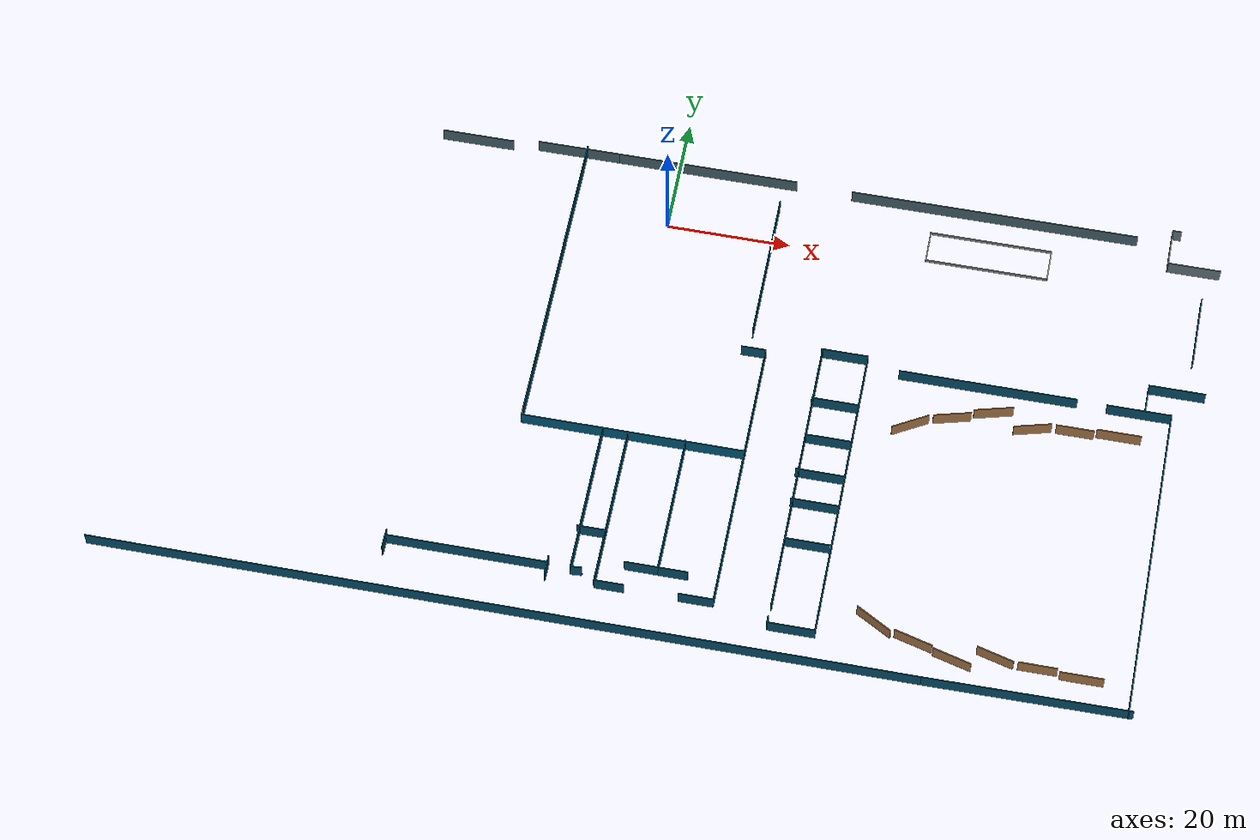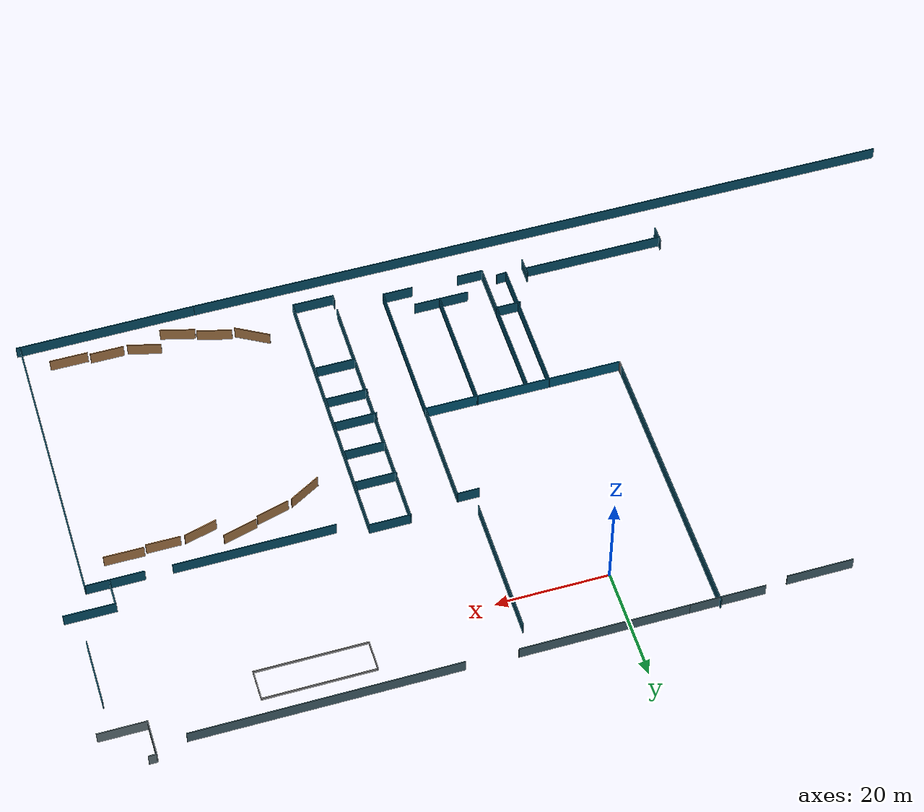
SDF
<sdf version="1.6">
 <model name="eceb_mp3">
  <pose>2.10284 -4.41124 0 0 -0 0</pose>
  <link name="Wall_104">
   <collision name="Wall_104_Collision">
    <geometry><box><size>11 0.15 2.5</size></box></geometry>
    <pose>0 0 1.25 0 -0 0</pose>
   </collision>
   <visual name="Wall_104_Visual">
    <pose>0 0 1.25 0 -0 0</pose>
    <geometry><box><size>11.75 0.15 2.5</size></box></geometry>
    <material>
     <script><uri>file://media/materials/scripts/gazebo.material</uri><name>Gazebo/Grey</name></script>
     <ambient>0.282353 0.403922 0.447059 1</ambient>
    </material>
    <meta><layer>0</layer></meta>
   </visual>
   <pose>-35.4921 14.5407 0 0 -0 3.14159</pose>
  </link>
  <link name="Wall_110">
   <collision name="Wall_110_Collision">
    <geometry><box><size>13 0.15 2.5</size></box></geometry>
    <pose>0 0 1.25 0 -0 0</pose>
   </collision>
   <visual name="Wall_110_Visual">
    <pose>0 0 1.25 0 -0 0</pose>
    <geometry><box><size>13.5 0.15 2.5</size></box></geometry>
    <material>
     <script><uri>file://media/materials/scripts/gazebo.material</uri><name>Gazebo/Grey</name></script>
     <ambient>0.282353 0.403922 0.447059 1</ambient>
    </material>
    <meta><layer>0</layer></meta>
   </visual>
   <pose>-18.8662 15.230800 0 0 -0 3.14159</pose>
  </link>
  <link name="Wall_127">
   <collision name="Wall_127_Collision">
    <geometry><box><size>29 0.15 2.5</size></box></geometry>
    <pose>0 0 1.25 0 -0 0</pose>
   </collision>
   <visual name="Wall_127_Visual">
    <pose>0 0 1.25 0 -0 0</pose>
    <geometry><box><size>29.5 0.15 2.5</size></box></geometry>
    <material>
     <script><uri>file://media/materials/scripts/gazebo.material</uri><name>Gazebo/Grey</name></script>
     <ambient>0.282353 0.403922 0.447059 1</ambient>
    </material>
    <meta><layer>0</layer></meta>
   </visual>
   <pose>2.44485 15.2308 0 0 -0 3.14159</pose>
  </link>
  <link name="Wall_134">
   <collision name="Wall_134_Collision">
    <geometry><box><size>51 0.15 2.5</size></box></geometry>
    <pose>0 0 1.25 0 -0 0</pose>
   </collision>
   <visual name="Wall_134_Visual">
    <pose>0 0 1.25 0 -0 0</pose>
    <geometry><box><size>51 0.15 2.5</size></box></geometry>
    <material>
     <script><uri>file://media/materials/scripts/gazebo.material</uri><name>Gazebo/Grey</name></script>
     <ambient>0.0313726 0.333333 0.443137 1</ambient>
    </material>
    <meta><layer>0</layer></meta>
   </visual>
   <pose>-17.5625 -9.64396 0 0 -0 -1.5708</pose>
  </link>
  <link name="Wall_148">
   <collision name="Wall_148_Collision">
    <geometry><box><size>129 0.15 2.5</size></box></geometry>
    <pose>0 0 1.25 0 -0 0</pose>
   </collision>
   <visual name="Wall_148_Visual">
    <pose>0 0 1.25 0 -0 0</pose>
    <geometry><box><size>129.5 0.15 2.5</size></box></geometry>
    <material>
     <script><uri>file://media/materials/scripts/gazebo.material</uri><name>Gazebo/Grey</name></script>
     <ambient>0.0313726 0.333333 0.443137 1</ambient>
    </material>
    <meta><layer>0</layer></meta>
   </visual>
   <pose>-13.9833 -69.8833 0 0 -0 0</pose>
  </link>
  <link name="Wall_151">
   <collision name="Wall_151_Collision">
    <geometry><box><size>32 0.15 2.5</size></box></geometry>
    <pose>0 0 1.25 0 -0 0</pose>
   </collision>
   <visual name="Wall_151_Visual">
    <pose>0 0 1.25 0 -0 0</pose>
    <geometry><box><size>32.09 0.15 2.5</size></box></geometry>
    <material>
     <script><uri>file://media/materials/scripts/gazebo.material</uri><name>Gazebo/Grey</name></script>
     <ambient>0.0313726 0.333333 0.443137 1</ambient>
    </material>
    <meta><layer>0</layer></meta>
   </visual>
   <pose>66.8099 -69.7617 0 0 -0 -3.13376</pose>
  </link>
  <link name="Wall_177">
   <collision name="Wall_177_Collision">
    <geometry><box><size>1 0.15 2.5</size></box></geometry>
    <pose>0 0 1.25 0 -0 0</pose>
   </collision>
   <visual name="Wall_177_Visual">
    <pose>0 0 1.25 0 -0 0</pose>
    <geometry><box><size>1.25 0.15 2.5</size></box></geometry>
    <material>
     <script><uri>file://media/materials/scripts/gazebo.material</uri><name>Gazebo/Grey</name></script>
     <ambient>1 1 1 1</ambient>
    </material>
    <meta><layer>0</layer></meta>
   </visual>
   <pose>-17.5625 -35.619 0 0 -0 -1.5708</pose>
  </link>
  <link name="Wall_178">
   <collision name="Wall_178_Collision">
    <geometry><box><size>35 0.15 2.5</size></box></geometry>
    <pose>0 0 1.25 0 -0 0</pose>
   </collision>
   <visual name="Wall_178_Visual">
    <pose>0 0 1.25 0 -0 0</pose>
    <geometry><box><size>35.5 0.15 2.5</size></box></geometry>
    <material>
     <script><uri>file://media/materials/scripts/gazebo.material</uri><name>Gazebo/Grey</name></script>
     <ambient>0.00784314 0.372549 0.505882 1</ambient>
    </material>
    <meta><layer>0</layer></meta>
   </visual>
   <pose>0.112491 -36.169 0 0 -0 0</pose>
  </link>
  <link name="Wall_180">
   <collision name="Wall_180_Collision">
    <geometry><box><size>3 0.15 2.5</size></box></geometry>
    <pose>0 0 1.25 0 -0 0</pose>
   </collision>
   <visual name="Wall_180_Visual">
    <pose>0 0 1.25 0 -0 0</pose>
    <geometry><box><size>3.25 0.15 2.5</size></box></geometry>
    <material>
     <script><uri>file://media/materials/scripts/gazebo.material</uri><name>Gazebo/Grey</name></script>
     <ambient>0.0313726 0.333333 0.443137 1</ambient>
    </material>
    <meta><layer>0</layer></meta>
   </visual>
   <pose>-33.5892 -61.8114 0 0 -0 -1.5708</pose>
  </link>
  <link name="Wall_182">
   <collision name="Wall_182_Collision">
    <geometry><box><size>25 0.15 2.5</size></box></geometry>
    <pose>0 0 1.25 0 -0 0</pose>
   </collision>
   <visual name="Wall_182_Visual">
    <pose>0 0 1.25 0 -0 0</pose>
    <geometry><box><size>25.5 0.15 2.5</size></box></geometry>
    <material>
     <script><uri>file://media/materials/scripts/gazebo.material</uri><name>Gazebo/Grey</name></script>
     <ambient>0.0313726 0.333333 0.443137 1</ambient>
    </material>
    <meta><layer>0</layer></meta>
   </visual>
   <pose>-20.9591 -61.1593 0 0 -0 0</pose>
  </link>
  <link name="Wall_184">
   <collision name="Wall_184_Collision">
    <geometry><box><size>3 0.15 2.5</size></box></geometry>
    <pose>0 0 1.25 0 -0 0</pose>
   </collision>
   <visual name="Wall_184_Visual">
    <pose>0 0 1.25 0 -0 0</pose>
    <geometry><box><size>3.25 0.15 2.5</size></box></geometry>
    <material>
     <script><uri>file://media/materials/scripts/gazebo.material</uri><name>Gazebo/Grey</name></script>
     <ambient>0.0313726 0.333333 0.443137 1</ambient>
    </material>
    <meta><layer>0</layer></meta>
   </visual>
   <pose>-8.26712 -61.6318 0 0 -0 -1.5708</pose>
  </link>
  <link name="Wall_186">
   <collision name="Wall_186_Collision">
    <geometry><box><size>25 0.15 2.5</size></box></geometry>
    <pose>0 0 1.25 0 -0 0</pose>
   </collision>
   <visual name="Wall_186_Visual">
    <pose>0 0 1.25 0 -0 0</pose>
    <geometry><box><size>25.25 0.15 2.5</size></box></geometry>
    <material>
     <script><uri>file://media/materials/scripts/gazebo.material</uri><name>Gazebo/Grey</name></script>
     <ambient>0.00784314 0.372549 0.505882 1</ambient>
    </material>
    <meta><layer>0</layer></meta>
   </visual>
   <pose>-4.65246 -48.6917 0 0 -0 1.5708</pose>
  </link>
  <link name="Wall_188">
   <collision name="Wall_188_Collision">
    <geometry><box><size>23 0.15 2.5</size></box></geometry>
    <pose>0 0 1.25 0 -0 0</pose>
   </collision>
   <visual name="Wall_188_Visual">
    <pose>0 0 1.25 0 -0 0</pose>
    <geometry><box><size>23 0.15 2.5</size></box></geometry>
    <material>
     <script><uri>file://media/materials/scripts/gazebo.material</uri><name>Gazebo/Grey</name></script>
     <ambient>0.00784314 0.372549 0.505882 1</ambient>
    </material>
    <meta><layer>0</layer></meta>
   </visual>
   <pose>8.45793 -47.4702 0 0 -0 -1.5708</pose>
  </link>
  <link name="Wall_189">
   <collision name="Wall_189_Collision">
    <geometry><box><size>5 0.15 2.5</size></box></geometry>
    <pose>0 0 1.25 0 -0 0</pose>
   </collision>
   <visual name="Wall_189_Visual">
    <pose>0 0 1.25 0 -0 0</pose>
    <geometry><box><size>5.25 0.15 2.5</size></box></geometry>
    <material>
     <script><uri>file://media/materials/scripts/gazebo.material</uri><name>Gazebo/Grey</name></script>
     <ambient>0.0313726 0.333333 0.443137 1</ambient>
    </material>
    <meta><layer>0</layer></meta>
   </visual>
   <pose>5.90793 -58.8952 0 0 -0 3.14159</pose>
  </link>
  <link name="Wall_191">
   <collision name="Wall_191_Collision">
    <geometry><box><size>4 0.15 2.5</size></box></geometry>
    <pose>0 0 1.25 0 -0 0</pose>
   </collision>
   <visual name="Wall_191_Visual">
    <pose>0 0 1.25 0 -0 0</pose>
    <geometry><box><size>4.75 0.15 2.5</size></box></geometry>
    <material>
     <script><uri>file://media/materials/scripts/gazebo.material</uri><name>Gazebo/Grey</name></script>
     <ambient>0.0313726 0.333333 0.443137 1</ambient>
    </material>
    <meta><layer>0</layer></meta>
   </visual>
   <pose>10.7679 -58.8952 0 0 -0 3.14159</pose>
  </link>
  <link name="Wall_193">
   <collision name="Wall_193_Collision">
    <geometry><box><size>4 0.15 2.5</size></box></geometry>
    <pose>0 0 1.25 0 -0 0</pose>
   </collision>
   <visual name="Wall_193_Visual">
    <pose>0 0 1.25 0 -0 0</pose>
    <geometry><box><size>4.75 0.15 2.5</size></box></geometry>
    <material>
     <script><uri>file://media/materials/scripts/gazebo.material</uri><name>Gazebo/Grey</name></script>
     <ambient>0.0313726 0.333333 0.443137 1</ambient>
    </material>
    <meta><layer>0</layer></meta>
   </visual>
   <pose>1.65317 -62.8733 0 0 -0 3.14159</pose>
  </link>
  <link name="Wall_194">
   <collision name="Wall_194_Collision">
    <geometry><box><size>9 0.15 2.5</size></box></geometry>
    <pose>0 0 1.25 0 -0 0</pose>
   </collision>
   <visual name="Wall_194_Visual">
    <pose>0 0 1.25 0 -0 0</pose>
    <geometry><box><size>9 0.15 2.5</size></box></geometry>
    <material>
     <script><uri>file://media/materials/scripts/gazebo.material</uri><name>Gazebo/Grey</name></script>
     <ambient>0.0313726 0.333333 0.443137 1</ambient>
    </material>
    <meta><layer>0</layer></meta>
   </visual>
   <pose>-0.646828 -58.4483 0 0 -0 1.5708</pose>
  </link>
  <link name="Wall_195">
   <collision name="Wall_195_Collision">
    <geometry><box><size>4 0.15 2.5</size></box></geometry>
    <pose>0 0 1.25 0 -0 0</pose>
   </collision>
   <visual name="Wall_195_Visual">
    <pose>0 0 1.25 0 -0 0</pose>
    <geometry><box><size>4.5 0.15 2.5</size></box></geometry>
    <material>
     <script><uri>file://media/materials/scripts/gazebo.material</uri><name>Gazebo/Grey</name></script>
     <ambient>0.0313726 0.333333 0.443137 1</ambient>
    </material>
    <meta><layer>0</layer></meta>
   </visual>
   <pose>-2.82183 -54.0233 0 0 -0 3.14159</pose>
  </link>
  <link name="Wall_197">
   <collision name="Wall_197_Collision">
    <geometry><box><size>1 0.15 2.5</size></box></geometry>
    <pose>0 0 1.25 0 -0 0</pose>
   </collision>
   <visual name="Wall_197_Visual">
    <pose>0 0 1.25 0 -0 0</pose>
    <geometry><box><size>1.88728 0.15 2.5</size></box></geometry>
    <material>
     <script><uri>file://media/materials/scripts/gazebo.material</uri><name>Gazebo/Grey</name></script>
     <ambient>0.0313726 0.333333 0.443137 1</ambient>
    </material>
    <meta><layer>0</layer></meta>
   </visual>
   <pose>-3.78515 -61.1937 0 0 -0 -3.08631</pose>
  </link>
  <link name="Wall_199">
   <collision name="Wall_199_Collision">
    <geometry><box><size>17 0.15 2.5</size></box></geometry>
    <pose>0 0 1.25 0 -0 0</pose>
   </collision>
   <visual name="Wall_199_Visual">
    <pose>0 0 1.25 0 -0 0</pose>
    <geometry><box><size>17.5 0.15 2.5</size></box></geometry>
    <material>
     <script><uri>file://media/materials/scripts/gazebo.material</uri><name>Gazebo/Grey</name></script>
     <ambient>0.00784314 0.372549 0.505882 1</ambient>
    </material>
    <meta><layer>0</layer></meta>
   </visual>
   <pose>-0.646828 -45.3483 0 0 -0 1.5708</pose>
  </link>
  <link name="Wall_201">
   <collision name="Wall_201_Collision">
    <geometry><box><size>26 0.15 2.5</size></box></geometry>
    <pose>0 0 1.25 0 -0 0</pose>
   </collision>
   <visual name="Wall_201_Visual">
    <pose>0 0 1.25 0 -0 0</pose>
    <geometry><box><size>26.75 0.15 2.5</size></box></geometry>
    <material>
     <script><uri>file://media/materials/scripts/gazebo.material</uri><name>Gazebo/Grey</name></script>
     <ambient>0.00784314 0.372549 0.505882 1</ambient>
    </material>
    <meta><layer>0</layer></meta>
   </visual>
   <pose>17.7875 -49.469 0 0 -0 -1.5708</pose>
  </link>
  <link name="Wall_202">
   <collision name="Wall_202_Collision">
    <geometry><box><size>5 0.15 2.5</size></box></geometry>
    <pose>0 0 1.25 0 -0 0</pose>
   </collision>
   <visual name="Wall_202_Visual">
    <pose>0 0 1.25 0 -0 0</pose>
    <geometry><box><size>5.5 0.15 2.5</size></box></geometry>
    <material>
     <script><uri>file://media/materials/scripts/gazebo.material</uri><name>Gazebo/Grey</name></script>
     <ambient>0.0313726 0.333333 0.443137 1</ambient>
    </material>
    <meta><layer>0</layer></meta>
   </visual>
   <pose>15.1125 -62.769 0 0 -0 3.14159</pose>
  </link>
  <link name="Wall_222">
   <collision name="Wall_222_Collision">
    <geometry><box><size>7 0.15 2.5</size></box></geometry>
    <pose>0 0 1.25 0 -0 0</pose>
   </collision>
   <visual name="Wall_222_Visual">
    <pose>0 0 1.25 0 -0 0</pose>
    <geometry><box><size>7.47055 0.15 2.5</size></box></geometry>
    <material>
     <script><uri>file://media/materials/scripts/gazebo.material</uri><name>Gazebo/Grey</name></script>
     <ambient>0.0313726 0.333333 0.443137 1</ambient>
    </material>
    <meta><layer>0</layer></meta>
   </visual>
   <pose>30.1326 -15.4643 0 0 -0 0</pose>
  </link>
  <link name="Wall_223">
   <collision name="Wall_223_Collision">
    <geometry><box><size>49 0.15 2.5</size></box></geometry>
    <pose>0 0 1.25 0 -0 0</pose>
   </collision>
   <visual name="Wall_223_Visual">
    <pose>0 0 1.25 0 -0 0</pose>
    <geometry><box><size>49.75 0.15 2.5</size></box></geometry>
    <material>
     <script><uri>file://media/materials/scripts/gazebo.material</uri><name>Gazebo/Grey</name></script>
     <ambient>0.0313726 0.333333 0.443137 1</ambient>
    </material>
    <meta><layer>0</layer></meta>
   </visual>
   <pose>33.8027 -40.2643 0 0 -0 -1.5708</pose>
  </link>
  <link name="Wall_225">
   <collision name="Wall_225_Collision">
    <geometry><box><size>7 0.15 2.5</size></box></geometry>
    <pose>0 0 1.25 0 -0 0</pose>
   </collision>
   <visual name="Wall_225_Visual">
    <pose>0 0 1.25 0 -0 0</pose>
    <geometry><box><size>7.5 0.15 2.5</size></box></geometry>
    <material>
     <script><uri>file://media/materials/scripts/gazebo.material</uri><name>Gazebo/Grey</name></script>
     <ambient>0.0313726 0.333333 0.443137 1</ambient>
    </material>
    <meta><layer>0</layer></meta>
   </visual>
   <pose>30.1277 -65.0643 0 0 -0 3.14159</pose>
  </link>
  <link name="Wall_226">
   <collision name="Wall_226_Collision">
    <geometry><box><size>1 0.15 2.5</size></box></geometry>
    <pose>0 0 1.25 0 -0 0</pose>
   </collision>
   <visual name="Wall_226_Visual">
    <pose>0 0 1.25 0 -0 0</pose>
    <geometry><box><size>1.25 0.15 2.5</size></box></geometry>
    <material>
     <script><uri>file://media/materials/scripts/gazebo.material</uri><name>Gazebo/Grey</name></script>
     <ambient>0.0313726 0.333333 0.443137 1</ambient>
    </material>
    <meta><layer>0</layer></meta>
   </visual>
   <pose>26.4527 -64.5143 0 0 -0 1.5708</pose>
  </link>
  <link name="Wall_228">
   <collision name="Wall_228_Collision">
    <geometry><box><size>46 0.15 2.5</size></box></geometry>
    <pose>0 0 1.25 0 -0 0</pose>
   </collision>
   <visual name="Wall_228_Visual">
    <pose>0 0 1.25 0 -0 0</pose>
    <geometry><box><size>46.5 0.15 2.5</size></box></geometry>
    <material>
     <script><uri>file://media/materials/scripts/gazebo.material</uri><name>Gazebo/Grey</name></script>
     <ambient>0.0313726 0.333333 0.443137 1</ambient>
    </material>
    <meta><layer>0</layer></meta>
   </visual>
   <pose>26.5588 -38.6105 0 0 -0 1.5708</pose>
  </link>
  <link name="Wall_230">
   <collision name="Wall_230_Collision">
    <geometry><box><size>7 0.15 2.5</size></box></geometry>
    <pose>0 0 1.25 0 -0 0</pose>
   </collision>
   <visual name="Wall_230_Visual">
    <pose>0 0 1.25 0 -0 0</pose>
    <geometry><box><size>7 0.15 2.5</size></box></geometry>
    <material>
     <script><uri>file://media/materials/scripts/gazebo.material</uri><name>Gazebo/Grey</name></script>
     <ambient>0.0313726 0.333333 0.443137 1</ambient>
    </material>
    <meta><layer>0</layer></meta>
   </visual>
   <pose>30.1219 -50.1726 0 0 -0 0</pose>
  </link>
  <link name="Wall_232">
   <collision name="Wall_232_Collision">
    <geometry><box><size>7 0.15 2.5</size></box></geometry>
    <pose>0 0 1.25 0 -0 0</pose>
   </collision>
   <visual name="Wall_232_Visual">
    <pose>0 0 1.25 0 -0 0</pose>
    <geometry><box><size>7.5 0.15 2.5</size></box></geometry>
    <material>
     <script><uri>file://media/materials/scripts/gazebo.material</uri><name>Gazebo/Grey</name></script>
     <ambient>0.0313726 0.333333 0.443137 1</ambient>
    </material>
    <meta><layer>0</layer></meta>
   </visual>
   <pose>29.9575 -43.1268 0 0 -0 0</pose>
  </link>
  <link name="Wall_234">
   <collision name="Wall_234_Collision">
    <geometry><box><size>7 0.15 2.5</size></box></geometry>
    <pose>0 0 1.25 0 -0 0</pose>
   </collision>
   <visual name="Wall_234_Visual">
    <pose>0 0 1.25 0 -0 0</pose>
    <geometry><box><size>7.75 0.15 2.5</size></box></geometry>
    <material>
     <script><uri>file://media/materials/scripts/gazebo.material</uri><name>Gazebo/Grey</name></script>
     <ambient>0.0313726 0.333333 0.443137 1</ambient>
    </material>
    <meta><layer>0</layer></meta>
   </visual>
   <pose>29.9443 -37.7389 0 0 -0 0</pose>
  </link>
  <link name="Wall_236">
   <collision name="Wall_236_Collision">
    <geometry><box><size>7 0.15 2.5</size></box></geometry>
    <pose>0 0 1.25 0 -0 0</pose>
   </collision>
   <visual name="Wall_236_Visual">
    <pose>0 0 1.25 0 -0 0</pose>
    <geometry><box><size>7.25 0.15 2.5</size></box></geometry>
    <material>
     <script><uri>file://media/materials/scripts/gazebo.material</uri><name>Gazebo/Grey</name></script>
     <ambient>0.0313726 0.333333 0.443137 1</ambient>
    </material>
    <meta><layer>0</layer></meta>
   </visual>
   <pose>30.1088 -31.384 0 0 -0 0</pose>
  </link>
  <link name="Wall_238">
   <collision name="Wall_238_Collision">
    <geometry><box><size>7 0.15 2.5</size></box></geometry>
    <pose>0 0 1.25 0 -0 0</pose>
   </collision>
   <visual name="Wall_238_Visual">
    <pose>0 0 1.25 0 -0 0</pose>
    <geometry><box><size>7.5 0.15 2.5</size></box></geometry>
    <material>
     <script><uri>file://media/materials/scripts/gazebo.material</uri><name>Gazebo/Grey</name></script>
     <ambient>0.0313726 0.333333 0.443137 1</ambient>
    </material>
    <meta><layer>0</layer></meta>
   </visual>
   <pose>30.0956 -24.6146 0 0 -0 0</pose>
  </link>
  <link name="Wall_240">
   <collision name="Wall_240_Collision">
    <geometry><box><size>28 0.15 2.5</size></box></geometry>
    <pose>0 0 1.25 0 -0 0</pose>
   </collision>
   <visual name="Wall_240_Visual">
    <pose>0 0 1.25 0 -0 0</pose>
    <geometry><box><size>28.25 0.15 2.5</size></box></geometry>
    <material>
     <script><uri>file://media/materials/scripts/gazebo.material</uri><name>Gazebo/Grey</name></script>
     <ambient>0.0313726 0.333333 0.443137 1</ambient>
    </material>
    <meta><layer>0</layer></meta>
   </visual>
   <pose>53.1805 -17.1544 0 0 -0 0</pose>
  </link>
  <link name="Wall_242">
   <collision name="Wall_242_Collision">
    <geometry><box><size>10 0.15 2.5</size></box></geometry>
    <pose>0 0 1.25 0 -0 0</pose>
   </collision>
   <visual name="Wall_242_Visual">
    <pose>0 0 1.25 0 -0 0</pose>
    <geometry><box><size>10.25 0.15 2.5</size></box></geometry>
    <material>
     <script><uri>file://media/materials/scripts/gazebo.material</uri><name>Gazebo/Grey</name></script>
     <ambient>0.0313726 0.333333 0.443137 1</ambient>
    </material>
    <meta><layer>0</layer></meta>
   </visual>
   <pose>77.0605 -17.2926 0 0 -0 0</pose>
  </link>
  <link name="Wall_243">
   <collision name="Wall_243_Collision">
    <geometry><box><size>52 0.15 2.5</size></box></geometry>
    <pose>0 0 1.25 0 -0 0</pose>
   </collision>
   <visual name="Wall_243_Visual">
    <pose>0 0 1.25 0 -0 0</pose>
    <geometry><box><size>52.5 0.15 2.5</size></box></geometry>
    <material>
     <script><uri>file://media/materials/scripts/gazebo.material</uri><name>Gazebo/Grey</name></script>
     <ambient>0.0313726 0.333333 0.443137 1</ambient>
    </material>
    <meta><layer>0</layer></meta>
   </visual>
   <pose>82.1106 -43.4676 0 0 -0 -1.5708</pose>
  </link>
  <link name="Wall_245">
   <collision name="Wall_245_Collision">
    <geometry><box><size>6 0.15 2.5</size></box></geometry>
    <pose>0 0 1.25 0 -0 0</pose>
   </collision>
   <visual name="Wall_245_Visual">
    <pose>0 0 1.25 0 -0 0</pose>
    <geometry><box><size>6.5 0.15 2.5</size></box></geometry>
    <material>
     <script><uri>file://media/materials/scripts/gazebo.material</uri><name>Gazebo/Wood</name></script>
     <ambient>1 1 1 1</ambient>
    </material>
    <meta><layer>0</layer></meta>
   </visual>
   <pose>42.2296 -61.3749 0 0 -0 -0.523599</pose>
  </link>
  <link name="Wall_247">
   <collision name="Wall_247_Collision">
    <geometry><box><size>6 0.15 2.5</size></box></geometry>
    <pose>0 0 1.25 0 -0 0</pose>
   </collision>
   <visual name="Wall_247_Visual">
    <pose>0 0 1.25 0 -0 0</pose>
    <geometry><box><size>6.25 0.15 2.5</size></box></geometry>
    <material>
     <script><uri>file://media/materials/scripts/gazebo.material</uri><name>Gazebo/Wood</name></script>
     <ambient>1 1 1 1</ambient>
    </material>
    <meta><layer>0</layer></meta>
   </visual>
   <pose>48.5917 -63.4828 0 0 -0 -0.261799</pose>
  </link>
  <link name="Wall_249">
   <collision name="Wall_249_Collision">
    <geometry><box><size>6 0.15 2.5</size></box></geometry>
    <pose>0 0 1.25 0 -0 0</pose>
   </collision>
   <visual name="Wall_249_Visual">
    <pose>0 0 1.25 0 -0 0</pose>
    <geometry><box><size>6.25 0.15 2.5</size></box></geometry>
    <material>
     <script><uri>file://media/materials/scripts/gazebo.material</uri><name>Gazebo/Wood</name></script>
     <ambient>1 1 1 1</ambient>
    </material>
    <meta><layer>0</layer></meta>
   </visual>
   <pose>54.7965 -65.4857 0 0 -0 -0.261799</pose>
  </link>
  <link name="Wall_251">
   <collision name="Wall_251_Collision">
    <geometry><box><size>6 0.15 2.5</size></box></geometry>
    <pose>0 0 1.25 0 -0 0</pose>
   </collision>
   <visual name="Wall_251_Visual">
    <pose>0 0 1.25 0 -0 0</pose>
    <geometry><box><size>6 0.15 2.5</size></box></geometry>
    <material>
     <script><uri>file://media/materials/scripts/gazebo.material</uri><name>Gazebo/Wood</name></script>
     <ambient>1 1 1 1</ambient>
    </material>
    <meta><layer>0</layer></meta>
   </visual>
   <pose>61.1555 -63.9217 0 0 -0 -0.261799</pose>
  </link>
  <link name="Wall_253">
   <collision name="Wall_253_Collision">
    <geometry><box><size>6 0.15 2.5</size></box></geometry>
    <pose>0 0 1.25 0 -0 0</pose>
   </collision>
   <visual name="Wall_253_Visual">
    <pose>0 0 1.25 0 -0 0</pose>
    <geometry><box><size>6 0.15 2.5</size></box></geometry>
    <material>
     <script><uri>file://media/materials/scripts/gazebo.material</uri><name>Gazebo/Wood</name></script>
     <ambient>1 1 1 1</ambient>
    </material>
    <meta><layer>0</layer></meta>
   </visual>
   <pose>67.6957 -64.6177 0 0 -0 0</pose>
  </link>
  <link name="Wall_255">
   <collision name="Wall_255_Collision">
    <geometry><box><size>6 0.15 2.5</size></box></geometry>
    <pose>0 0 1.25 0 -0 0</pose>
   </collision>
   <visual name="Wall_255_Visual">
    <pose>0 0 1.25 0 -0 0</pose>
    <geometry><box><size>6.75 0.15 2.5</size></box></geometry>
    <material>
     <script><uri>file://media/materials/scripts/gazebo.material</uri><name>Gazebo/Wood</name></script>
     <ambient>1 1 1 1</ambient>
    </material>
    <meta><layer>0</layer></meta>
   </visual>
   <pose>74.4326 -65.089 0 0 -0 0</pose>
  </link>
  <link name="Wall_257">
   <collision name="Wall_257_Collision">
    <geometry><box><size>6 0.15 2.5</size></box></geometry>
    <pose>0 0 1.25 0 -0 0</pose>
   </collision>
   <visual name="Wall_257_Visual">
    <pose>0 0 1.25 0 -0 0</pose>
    <geometry><box><size>6.25 0.15 2.5</size></box></geometry>
    <material>
     <script><uri>file://media/materials/scripts/gazebo.material</uri><name>Gazebo/Wood</name></script>
     <ambient>1 1 1 1</ambient>
    </material>
    <meta><layer>0</layer></meta>
   </visual>
   <pose>42.2392 -25.9029 0 0 -0 0.523599</pose>
  </link>
  <link name="Wall_259">
   <collision name="Wall_259_Collision">
    <geometry><box><size>6 0.15 2.5</size></box></geometry>
    <pose>0 0 1.25 0 -0 0</pose>
   </collision>
   <visual name="Wall_259_Visual">
    <pose>0 0 1.25 0 -0 0</pose>
    <geometry><box><size>6 0.15 2.5</size></box></geometry>
    <material>
     <script><uri>file://media/materials/scripts/gazebo.material</uri><name>Gazebo/Wood</name></script>
     <ambient>1 1 1 1</ambient>
    </material>
    <meta><layer>0</layer></meta>
   </visual>
   <pose>48.4709 -23.4113 0 0 -0 0.261799</pose>
  </link>
  <link name="Wall_261">
   <collision name="Wall_261_Collision">
    <geometry><box><size>6 0.15 2.5</size></box></geometry>
    <pose>0 0 1.25 0 -0 0</pose>
   </collision>
   <visual name="Wall_261_Visual">
    <pose>0 0 1.25 0 -0 0</pose>
    <geometry><box><size>6.25 0.15 2.5</size></box></geometry>
    <material>
     <script><uri>file://media/materials/scripts/gazebo.material</uri><name>Gazebo/Wood</name></script>
     <ambient>1 1 1 1</ambient>
    </material>
    <meta><layer>0</layer></meta>
   </visual>
   <pose>54.6787 -21.2583 0 0 -0 0.261799</pose>
  </link>
  <link name="Wall_263">
   <collision name="Wall_263_Collision">
    <geometry><box><size>6 0.15 2.5</size></box></geometry>
    <pose>0 0 1.25 0 -0 0</pose>
   </collision>
   <visual name="Wall_263_Visual">
    <pose>0 0 1.25 0 -0 0</pose>
    <geometry><box><size>6 0.15 2.5</size></box></geometry>
    <material>
     <script><uri>file://media/materials/scripts/gazebo.material</uri><name>Gazebo/Wood</name></script>
     <ambient>1 1 1 1</ambient>
    </material>
    <meta><layer>0</layer></meta>
   </visual>
   <pose>61.077 -23.0971 0 0 -0 0.261799</pose>
  </link>
  <link name="Wall_265">
   <collision name="Wall_265_Collision">
    <geometry><box><size>6 0.15 2.5</size></box></geometry>
    <pose>0 0 1.25 0 -0 0</pose>
   </collision>
   <visual name="Wall_265_Visual">
    <pose>0 0 1.25 0 -0 0</pose>
    <geometry><box><size>6 0.15 2.5</size></box></geometry>
    <material>
     <script><uri>file://media/materials/scripts/gazebo.material</uri><name>Gazebo/Wood</name></script>
     <ambient>1 1 1 1</ambient>
    </material>
    <meta><layer>0</layer></meta>
   </visual>
   <pose>67.6564 -22.3619 0 0 -0 0</pose>
  </link>
  <link name="Wall_267">
   <collision name="Wall_267_Collision">
    <geometry><box><size>7 0.15 2.5</size></box></geometry>
    <pose>0 0 1.25 0 -0 0</pose>
   </collision>
   <visual name="Wall_267_Visual">
    <pose>0 0 1.25 0 -0 0</pose>
    <geometry><box><size>7 0.15 2.5</size></box></geometry>
    <material>
     <script><uri>file://media/materials/scripts/gazebo.material</uri><name>Gazebo/Wood</name></script>
     <ambient>1 1 1 1</ambient>
    </material>
    <meta><layer>0</layer></meta>
   </visual>
   <pose>74.4791 -21.9692 0 0 -0 0</pose>
  </link>
  <link name="Wall_269">
   <collision name="Wall_269_Collision">
    <geometry><box><size>19 0.15 2.5</size></box></geometry>
    <pose>0 0 1.25 0 -0 0</pose>
   </collision>
   <visual name="Wall_269_Visual">
    <pose>0 0 1.25 0 -0 0</pose>
    <geometry><box><size>19 0.15 2.5</size></box></geometry>
    <material>
     <script><uri>file://media/materials/scripts/gazebo.material</uri><name>Gazebo/Grey</name></script>
     <ambient>0.0313726 0.333333 0.443137 1</ambient>
    </material>
    <meta><layer>0</layer></meta>
   </visual>
   <pose>17.7875 -26.744 0 0 -0 1.5708</pose>
  </link>
  <link name="Wall_270">
   <collision name="Wall_270_Collision">
    <geometry><box><size>4 0.15 2.5</size></box></geometry>
    <pose>0 0 1.25 0 -0 0</pose>
   </collision>
   <visual name="Wall_270_Visual">
    <pose>0 0 1.25 0 -0 0</pose>
    <geometry><box><size>4 0.15 2.5</size></box></geometry>
    <material>
     <script><uri>file://media/materials/scripts/gazebo.material</uri><name>Gazebo/Grey</name></script>
     <ambient>0.0313726 0.333333 0.443137 1</ambient>
    </material>
    <meta><layer>0</layer></meta>
   </visual>
   <pose>15.8625 -17.319 0 0 -0 3.14159</pose>
  </link>
  <link name="Wall_272">
   <collision name="Wall_272_Collision">
    <geometry><box><size>25 0.15 2.5</size></box></geometry>
    <pose>0 0 1.25 0 -0 0</pose>
   </collision>
   <visual name="Wall_272_Visual">
    <pose>0 0 1.25 0 -0 0</pose>
    <geometry><box><size>25 0.15 2.5</size></box></geometry>
    <material>
     <script><uri>file://media/materials/scripts/gazebo.material</uri><name>Gazebo/Grey</name></script>
     <ambient>0.0313726 0.333333 0.443137 1</ambient>
    </material>
    <meta><layer>0</layer></meta>
   </visual>
   <pose>15.1197 -1.47225 0 0 -0 1.5708</pose>
  </link>
  <link name="Wall_274">
   <collision name="Wall_274_Collision">
    <geometry><box><size>5 0.15 0.5</size></box></geometry>
    <pose>0 0 0.25 0 -0 0</pose>
   </collision>
   <visual name="Wall_274_Visual">
    <pose>0 0 0.25 0 -0 0</pose>
    <geometry><box><size>5.5 0.15 0.5</size></box></geometry>
    <material>
     <script><uri>file://media/materials/scripts/gazebo.material</uri><name>Gazebo/Grey</name></script>
     <ambient>1 1 1 1</ambient>
    </material>
    <meta><layer>0</layer></meta>
   </visual>
   <pose>39.8532 8.26624 0 0 -0 -1.5708</pose>
  </link>
  <link name="Wall_275">
   <collision name="Wall_275_Collision">
    <geometry><box><size>19 0.15 0.5</size></box></geometry>
    <pose>0 0 0.25 0 -0 0</pose>
   </collision>
   <visual name="Wall_275_Visual">
    <pose>0 0 0.25 0 -0 0</pose>
    <geometry><box><size>19.75 0.15 0.5</size></box></geometry>
    <material>
     <script><uri>file://media/materials/scripts/gazebo.material</uri><name>Gazebo/Grey</name></script>
     <ambient>1 1 1 1</ambient>
    </material>
    <meta><layer>0</layer></meta>
   </visual>
   <pose>49.6532 5.59124 0 0 -0 0</pose>
  </link>
  <link name="Wall_276">
   <collision name="Wall_276_Collision">
    <geometry><box><size>5 0.15 0.5</size></box></geometry>
    <pose>0 0 0.25 0 -0 0</pose>
   </collision>
   <visual name="Wall_276_Visual">
    <pose>0 0 0.25 0 -0 0</pose>
    <geometry><box><size>5.5 0.15 0.5</size></box></geometry>
    <material>
     <script><uri>file://media/materials/scripts/gazebo.material</uri><name>Gazebo/Grey</name></script>
     <ambient>1 1 1 1</ambient>
    </material>
    <meta><layer>0</layer></meta>
   </visual>
   <pose>59.4532 8.26624 0 0 -0 1.5708</pose>
  </link>
  <link name="Wall_277">
   <collision name="Wall_277_Collision">
    <geometry><box><size>19 0.15 0.5</size></box></geometry>
    <pose>0 0 0.25 0 -0 0</pose>
   </collision>
   <visual name="Wall_277_Visual">
    <pose>0 0 0.25 0 -0 0</pose>
    <geometry><box><size>19.75 0.15 0.5</size></box></geometry>
    <material>
     <script><uri>file://media/materials/scripts/gazebo.material</uri><name>Gazebo/Grey</name></script>
     <ambient>1 1 1 1</ambient>
    </material>
    <meta><layer>0</layer></meta>
   </visual>
   <pose>49.6532 10.9412 0 0 -0 3.14159</pose>
  </link>
  <link name="Wall_279">
   <collision name="Wall_279_Collision">
    <geometry><box><size>46 0.15 2.5</size></box></geometry>
    <pose>0 0 1.25 0 -0 0</pose>
   </collision>
   <visual name="Wall_279_Visual">
    <pose>0 0 1.25 0 -0 0</pose>
    <geometry><box><size>46.5 0.15 2.5</size></box></geometry>
    <material>
     <script><uri>file://media/materials/scripts/gazebo.material</uri><name>Gazebo/Grey</name></script>
     <ambient>0.282353 0.403922 0.447059 1</ambient>
    </material>
    <meta><layer>0</layer></meta>
   </visual>
   <pose>49.4792 15.0054 0 0 -0 0</pose>
  </link>
  <link name="Wall_291">
   <collision name="Wall_291_Collision">
    <geometry><box><size>4 0.15 2.5</size></box></geometry>
    <pose>0 0 1.25 0 -0 0</pose>
   </collision>
   <visual name="Wall_291_Visual">
    <pose>0 0 1.25 0 -0 0</pose>
    <geometry><box><size>4.75 0.15 2.5</size></box></geometry>
    <material>
     <script><uri>file://media/materials/scripts/gazebo.material</uri><name>Gazebo/Grey</name></script>
     <ambient>0.0313726 0.333333 0.443137 1</ambient>
    </material>
    <meta><layer>0</layer></meta>
   </visual>
   <pose>77.9694 -14.7596 0 0 -0 1.5708</pose>
  </link>
  <link name="Wall_292">
   <collision name="Wall_292_Collision">
    <geometry><box><size>9 0.15 2.5</size></box></geometry>
    <pose>0 0 1.25 0 -0 0</pose>
   </collision>
   <visual name="Wall_292_Visual">
    <pose>0 0 1.25 0 -0 0</pose>
    <geometry><box><size>9 0.15 2.5</size></box></geometry>
    <material>
     <script><uri>file://media/materials/scripts/gazebo.material</uri><name>Gazebo/Grey</name></script>
     <ambient>0.0313726 0.333333 0.443137 1</ambient>
    </material>
    <meta><layer>0</layer></meta>
   </visual>
   <pose>82.3944 -12.4596 0 0 -0 0</pose>
  </link>
  <link name="Wall_294">
   <collision name="Wall_294_Collision">
    <geometry><box><size>11 0.15 2.5</size></box></geometry>
    <pose>0 0 1.25 0 -0 0</pose>
   </collision>
   <visual name="Wall_294_Visual">
    <pose>0 0 1.25 0 -0 0</pose>
    <geometry><box><size>11.75 0.15 2.5</size></box></geometry>
    <material>
     <script><uri>file://media/materials/scripts/gazebo.material</uri><name>Gazebo/Grey</name></script>
     <ambient>0.0313726 0.333333 0.443137 1</ambient>
    </material>
    <meta><layer>0</layer></meta>
   </visual>
   <pose>84.2017 -0.730236 0 0 -0 -1.5708</pose>
  </link>
  <link name="Wall_296">
   <collision name="Wall_296_Collision">
    <geometry><box><size>8 0.15 2.5</size></box></geometry>
    <pose>0 0 1.25 0 -0 0</pose>
   </collision>
   <visual name="Wall_296_Visual">
    <pose>0 0 1.25 0 -0 0</pose>
    <geometry><box><size>8.5 0.15 2.5</size></box></geometry>
    <material>
     <script><uri>file://media/materials/scripts/gazebo.material</uri><name>Gazebo/Grey</name></script>
     <ambient>0.411765 0.486275 0.509804 1</ambient>
    </material>
    <meta><layer>0</layer></meta>
   </visual>
   <pose>82.2848 10.9408 0 0 -0 3.14159</pose>
  </link>
  <link name="Wall_297">
   <collision name="Wall_297_Collision">
    <geometry><box><size>6 0.15 2.5</size></box></geometry>
    <pose>0 0 1.25 0 -0 0</pose>
   </collision>
   <visual name="Wall_297_Visual">
    <pose>0 0 1.25 0 -0 0</pose>
    <geometry><box><size>6.5 0.15 2.5</size></box></geometry>
    <material>
     <script><uri>file://media/materials/scripts/gazebo.material</uri><name>Gazebo/Grey</name></script>
     <ambient>0.411765 0.486275 0.509804 1</ambient>
    </material>
    <meta><layer>0</layer></meta>
   </visual>
   <pose>78.1098 14.1158 0 0 -0 1.5708</pose>
  </link>
  <link name="Wall_298">
   <collision name="Wall_298_Collision">
    <geometry><box><size>1 0.15 2.5</size></box></geometry>
    <pose>0 0 1.25 0 -0 0</pose>
   </collision>
   <visual name="Wall_298_Visual">
    <pose>0 0 1.25 0 -0 0</pose>
    <geometry><box><size>1.5 0.15 2.5</size></box></geometry>
    <material>
     <script><uri>file://media/materials/scripts/gazebo.material</uri><name>Gazebo/Grey</name></script>
     <ambient>0.411765 0.486275 0.509804 1</ambient>
    </material>
    <meta><layer>0</layer></meta>
   </visual>
   <pose>78.7848 17.2908 0 0 -0 0</pose>
  </link>
  <static>1</static>
 </model>
</sdf>
